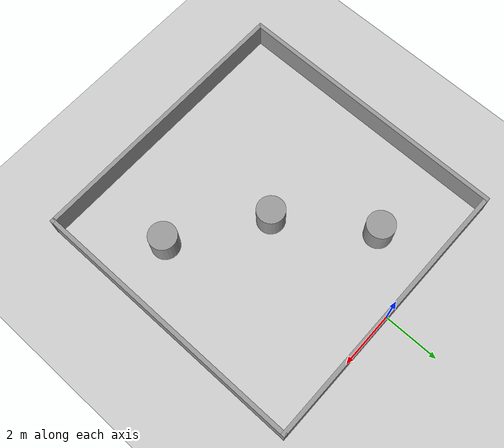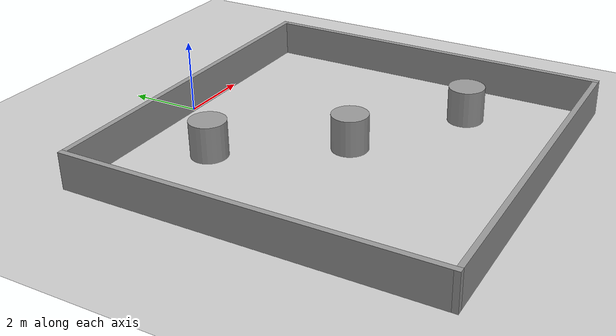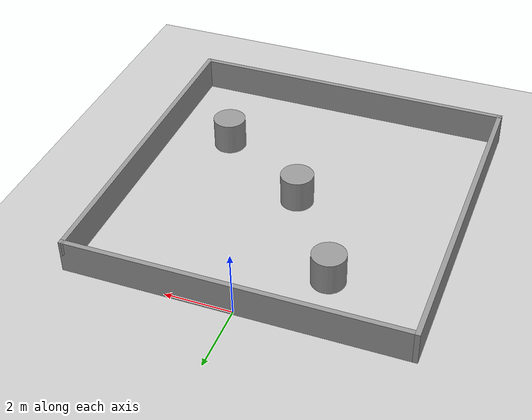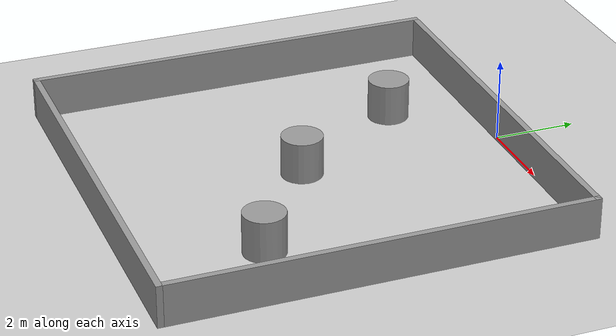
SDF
<sdf version="1.7">
 <world name="default">
  <plugin name="set_entity_state_plugin" filename="libset_entity_state.so">
   <robot_name>my_robot</robot_name>
  </plugin>
  <plugin name="gazebo_ros_state" filename="libgazebo_ros_state.so">
   <ros><argument>model_states:=model_states_demo</argument></ros>
   <update_rate>1.0</update_rate>
  </plugin>
  <light name="sun" type="directional">
   <pose>0 0 10 0 -0 0</pose>
   <diffuse>0.8 0.8 0.8 1</diffuse>
   <specular>0.2 0.2 0.2 1</specular>
   <attenuation>
    <range>1000</range>
    <constant>0.9</constant>
    <linear>0.01</linear>
    <quadratic>0.001</quadratic>
   </attenuation>
   <direction>-0.5 0.1 -0.9</direction>
   <spot><inner_angle>0</inner_angle><outer_angle>0</outer_angle><falloff>0</falloff></spot>
  </light>
  <model name="ground_plane">
   <static>1</static>
   <link name="link">
    <collision name="collision">
     <geometry><plane><normal>0 0 1</normal><size>100 100</size></plane></geometry>
     <surface><friction><ode><mu>100</mu><mu2>50</mu2></ode></friction></surface>
    </collision>
    <visual name="visual">
     <cast_shadows>0</cast_shadows>
     <geometry><plane><normal>0 0 1</normal><size>100 100</size></plane></geometry>
     <material>
      <script><uri>file://media/materials/scripts/gazebo.material</uri><name>Gazebo/Grey</name></script>
     </material>
    </visual>
   </link>
  </model>
  <gravity>0 0 -9.8</gravity>
  <magnetic_field>6e-06 2.3e-05 -4.2e-05</magnetic_field>
  <atmosphere type="adiabatic"/>
  <physics type="ode">
   <max_step_size>0.001</max_step_size>
   <real_time_factor>1</real_time_factor>
   <real_time_update_rate>1000</real_time_update_rate>
  </physics>
  <scene><ambient>0.4 0.4 0.4 1</ambient><background>0.7 0.7 0.7 1</background><shadows>1</shadows></scene>
  <spherical_coordinates>
   <surface_model>EARTH_WGS84</surface_model>
   <latitude_deg>0</latitude_deg>
   <longitude_deg>0</longitude_deg>
   <elevation>0</elevation>
   <heading_deg>0</heading_deg>
  </spherical_coordinates>
  <audio><device>default</device></audio>
  <model name="map3.world">
   <pose>0 -5 0 0 -0 0</pose>
   <link name="Wall_11">
    <collision name="Wall_11_Collision">
     <geometry><box><size>10.15 0.15 1</size></box></geometry>
     <pose>0 0 0.5 0 -0 0</pose>
    </collision>
    <visual name="Wall_11_Visual">
     <pose>0 0 0.5 0 -0 0</pose>
     <geometry><box><size>10.15 0.15 1</size></box></geometry>
     <material>
      <script><uri>file://media/materials/scripts/gazebo.material</uri><name>Gazebo/Grey</name></script>
      <ambient>1 1 1 1</ambient>
     </material>
     <meta><layer>0</layer></meta>
    </visual>
    <pose>-5 0 0 0 -0 1.5708</pose>
   </link>
   <link name="Wall_2">
    <collision name="Wall_2_Collision">
     <geometry><box><size>10 0.15 1</size></box></geometry>
     <pose>0 0 0.5 0 -0 0</pose>
    </collision>
    <visual name="Wall_2_Visual">
     <pose>0 0 0.5 0 -0 0</pose>
     <geometry><box><size>10 0.15 1</size></box></geometry>
     <material>
      <script><uri>file://media/materials/scripts/gazebo.material</uri><name>Gazebo/Grey</name></script>
      <ambient>1 1 1 1</ambient>
     </material>
     <meta><layer>0</layer></meta>
    </visual>
    <pose>0.075 5 0 0 -0 0</pose>
   </link>
   <link name="Wall_4">
    <collision name="Wall_4_Collision">
     <geometry><box><size>10.15 0.15 1</size></box></geometry>
     <pose>0 0 0.5 0 -0 0</pose>
    </collision>
    <visual name="Wall_4_Visual">
     <pose>0 0 0.5 0 -0 0</pose>
     <geometry><box><size>10.15 0.15 1</size></box></geometry>
     <material>
      <script><uri>file://media/materials/scripts/gazebo.material</uri><name>Gazebo/Grey</name></script>
      <ambient>1 1 1 1</ambient>
     </material>
     <meta><layer>0</layer></meta>
    </visual>
    <pose>5 0 0 0 -0 -1.5708</pose>
   </link>
   <link name="Wall_9">
    <collision name="Wall_9_Collision">
     <geometry><box><size>10.15 0.15 1</size></box></geometry>
     <pose>0 0 0.5 0 -0 0</pose>
    </collision>
    <visual name="Wall_9_Visual">
     <pose>0 0 0.5 0 -0 0</pose>
     <geometry><box><size>10.15 0.15 1</size></box></geometry>
     <material>
      <script><uri>file://media/materials/scripts/gazebo.material</uri><name>Gazebo/Grey</name></script>
      <ambient>1 1 1 1</ambient>
     </material>
     <meta><layer>0</layer></meta>
    </visual>
    <pose>0 -5 0 0 -0 3.14159</pose>
   </link>
   <static>1</static>
  </model>
  <model name="unit_cylinder">
   <static>1</static>
   <pose>-0 -5 0.499991 -0 -0 -0</pose>
   <link name="link">
    <inertial>
     <mass>1</mass>
     <inertia><ixx>0.145833</ixx><ixy>0</ixy><ixz>0</ixz><iyy>0.145833</iyy><iyz>0</iyz><izz>0.125</izz></inertia>
    </inertial>
    <collision name="collision">
     <geometry><cylinder><radius>0.5</radius><length>1</length></cylinder></geometry>
    </collision>
    <visual name="visual">
     <geometry><cylinder><radius>0.5</radius><length>1</length></cylinder></geometry>
     <material>
      <script><name>Gazebo/Grey</name><uri>file://media/materials/scripts/gazebo.material</uri></script>
     </material>
    </visual>
   </link>
  </model>
  <model name="unit_cylinder_0">
   <static>1</static>
   <pose>-2 -2 0.499999 0 -0 0</pose>
   <link name="link">
    <inertial>
     <mass>1</mass>
     <inertia><ixx>0.145833</ixx><ixy>0</ixy><ixz>0</ixz><iyy>0.145833</iyy><iyz>0</iyz><izz>0.125</izz></inertia>
    </inertial>
    <collision name="collision">
     <geometry><cylinder><radius>0.5</radius><length>1</length></cylinder></geometry>
    </collision>
    <visual name="visual">
     <geometry><cylinder><radius>0.5</radius><length>1</length></cylinder></geometry>
     <material>
      <script><name>Gazebo/Grey</name><uri>file://media/materials/scripts/gazebo.material</uri></script>
     </material>
    </visual>
   </link>
  </model>
  <model name="unit_cylinder_1">
   <static>1</static>
   <pose>3 -7 0.499997 2e-06 4e-06 -0</pose>
   <link name="link">
    <inertial>
     <mass>1</mass>
     <inertia><ixx>0.145833</ixx><ixy>0</ixy><ixz>0</ixz><iyy>0.145833</iyy><iyz>0</iyz><izz>0.125</izz></inertia>
    </inertial>
    <collision name="collision">
     <geometry><cylinder><radius>0.5</radius><length>1</length></cylinder></geometry>
    </collision>
    <visual name="visual">
     <geometry><cylinder><radius>0.5</radius><length>1</length></cylinder></geometry>
     <material>
      <script><name>Gazebo/Grey</name><uri>file://media/materials/scripts/gazebo.material</uri></script>
     </material>
    </visual>
   </link>
  </model>
 </world>
</sdf>
